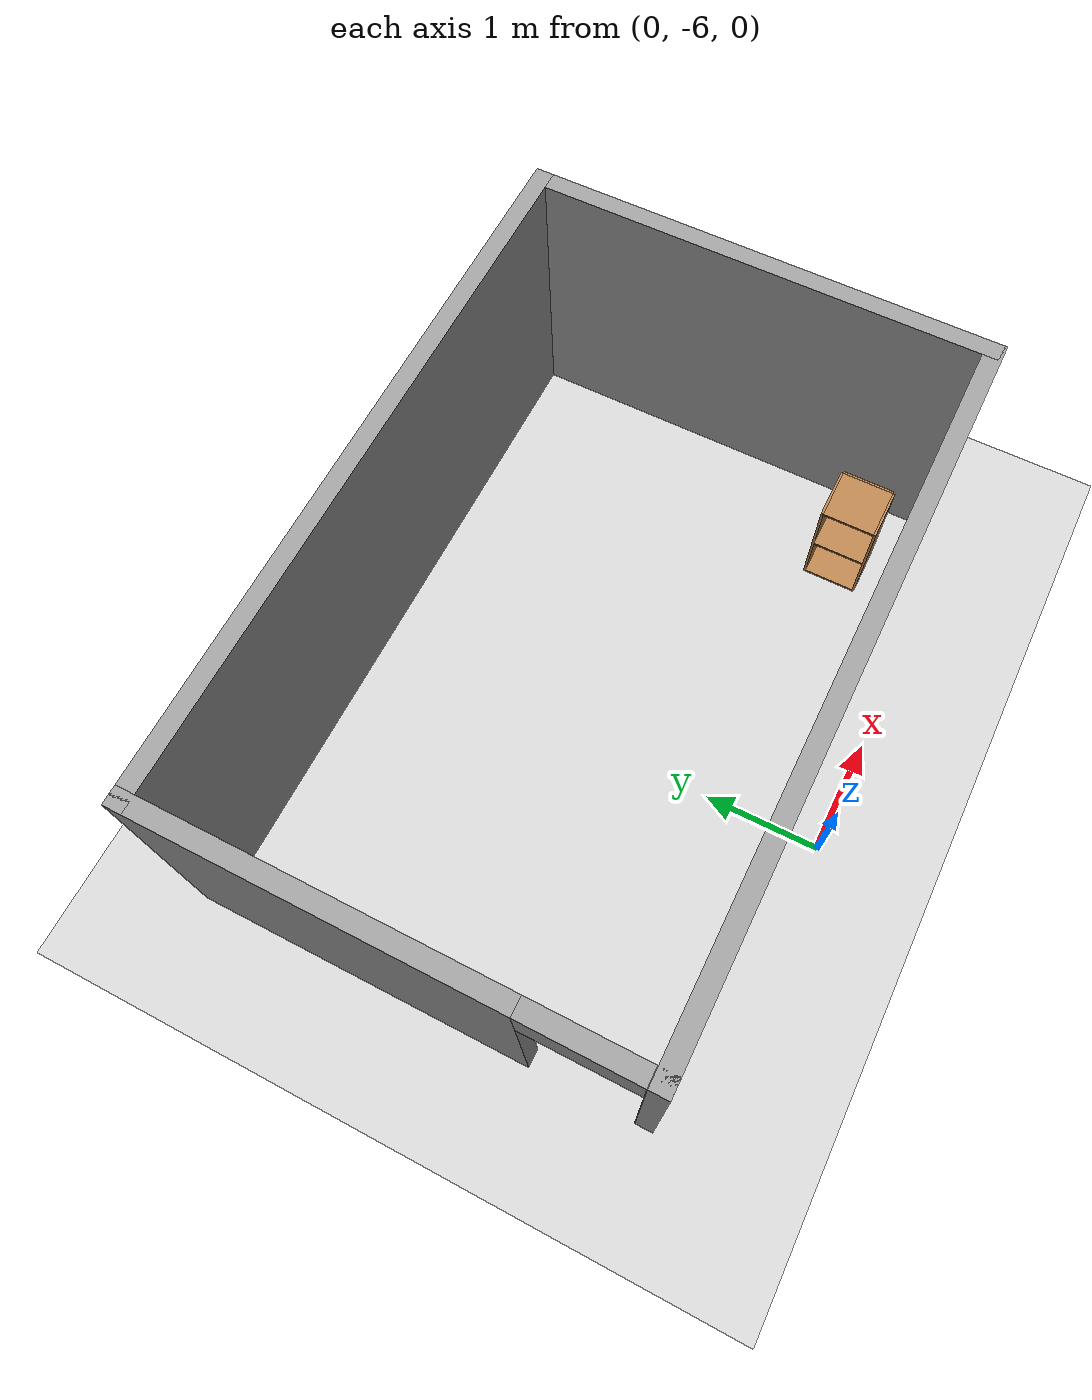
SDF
<sdf version="1.6">
 <world name="default">
  <light name="sun" type="directional">
   <pose>0 0 10 0 -0 0</pose>
   <diffuse>0.8 0.8 0.8 1</diffuse>
   <specular>0.2 0.2 0.2 1</specular>
   <attenuation>
    <range>1000</range>
    <constant>0.9</constant>
    <linear>0.01</linear>
    <quadratic>0.001</quadratic>
   </attenuation>
   <direction>-0.5 0.1 -0.9</direction>
  </light>
  <model name="ground_plane">
   <static>1</static>
   <link name="link">
    <collision name="collision">
     <geometry><plane><normal>0 0 1</normal><size>100 100</size></plane></geometry>
     <surface><friction><ode><mu>100</mu><mu2>50</mu2></ode></friction></surface>
    </collision>
    <visual name="visual">
     <cast_shadows>0</cast_shadows>
     <geometry><plane><normal>0 0 1</normal><size>100 100</size></plane></geometry>
     <material>
      <script><uri>file://media/materials/scripts/gazebo.material</uri><name>Gazebo/Grey</name></script>
     </material>
    </visual>
   </link>
  </model>
  <gravity>0 0 -9.8</gravity>
  <magnetic_field>6e-06 2.3e-05 -4.2e-05</magnetic_field>
  <atmosphere type="adiabatic"/>
  <physics name="default_physics" default="0" type="ode">
   <max_step_size>0.001</max_step_size>
   <real_time_factor>1</real_time_factor>
   <real_time_update_rate>1000</real_time_update_rate>
  </physics>
  <scene><ambient>0.4 0.4 0.4 1</ambient><background>0.7 0.7 0.7 1</background><shadows>1</shadows></scene>
  <audio><device>default</device></audio>
  <spherical_coordinates>
   <surface_model>EARTH_WGS84</surface_model>
   <latitude_deg>0</latitude_deg>
   <longitude_deg>0</longitude_deg>
   <elevation>0</elevation>
   <heading_deg>0</heading_deg>
  </spherical_coordinates>
  <model name="room1.world">
   <pose>0.415 -3.725 0 0 -0 0</pose>
   <link name="Wall_0">
    <collision name="Wall_0_Collision">
     <geometry><box><size>6 0.15 2.5</size></box></geometry>
     <pose>0 0 1.25 0 -0 0</pose>
    </collision>
    <visual name="Wall_0_Visual">
     <pose>0 0 1.25 0 -0 0</pose>
     <geometry><box><size>6 0.15 2.5</size></box></geometry>
     <material>
      <script><uri>file://media/materials/scripts/gazebo.material</uri><name>Gazebo/Grey</name></script>
      <ambient>1 1 1 1</ambient>
     </material>
     <meta><layer>0</layer></meta>
    </visual>
    <pose>0 1.925 0 0 -0 0</pose>
   </link>
   <link name="Wall_1">
    <collision name="Wall_1_Collision">
     <geometry><box><size>4 0.15 2.5</size></box></geometry>
     <pose>0 0 1.25 0 -0 0</pose>
    </collision>
    <visual name="Wall_1_Visual">
     <pose>0 0 1.25 0 -0 0</pose>
     <geometry><box><size>4 0.15 2.5</size></box></geometry>
     <material>
      <script><uri>file://media/materials/scripts/gazebo.material</uri><name>Gazebo/Grey</name></script>
      <ambient>1 1 1 1</ambient>
     </material>
     <meta><layer>0</layer></meta>
    </visual>
    <pose>2.925 0 0 0 -0 -1.5708</pose>
   </link>
   <link name="Wall_2">
    <collision name="Wall_2_Collision">
     <geometry><box><size>6 0.15 2.5</size></box></geometry>
     <pose>0 0 1.25 0 -0 0</pose>
    </collision>
    <visual name="Wall_2_Visual">
     <pose>0 0 1.25 0 -0 0</pose>
     <geometry><box><size>6 0.15 2.5</size></box></geometry>
     <material>
      <script><uri>file://media/materials/scripts/gazebo.material</uri><name>Gazebo/Grey</name></script>
      <ambient>1 1 1 1</ambient>
     </material>
     <meta><layer>0</layer></meta>
    </visual>
    <pose>0 -1.925 0 0 -0 3.14159</pose>
   </link>
   <link name="Wall_3">
    <pose>-2.925 0 0 0 -0 1.5708</pose>
    <visual name="Wall_3_Visual_0">
     <pose>-1.9225 0 1.25 0 -0 0</pose>
     <geometry><box><size>0.155 0.15 2.5</size></box></geometry>
     <material>
      <script><uri>file://media/materials/scripts/gazebo.material</uri><name>Gazebo/Grey</name></script>
      <ambient>1 1 1 1</ambient>
     </material>
     <meta><layer>0</layer></meta>
    </visual>
    <collision name="Wall_3_Collision_0">
     <geometry><box><size>0.155 0.15 2.5</size></box></geometry>
     <pose>-1.9225 0 1.25 0 -0 0</pose>
    </collision>
    <visual name="Wall_3_Visual_1">
     <pose>0.5275 0 1.25 0 -0 0</pose>
     <geometry><box><size>2.945 0.15 2.5</size></box></geometry>
     <material>
      <script><uri>file://media/materials/scripts/gazebo.material</uri><name>Gazebo/Grey</name></script>
      <ambient>1 1 1 1</ambient>
     </material>
     <meta><layer>0</layer></meta>
    </visual>
    <collision name="Wall_3_Collision_1">
     <geometry><box><size>2.945 0.15 2.5</size></box></geometry>
     <pose>0.5275 0 1.25 0 -0 0</pose>
    </collision>
    <visual name="Wall_3_Visual_2">
     <pose>-1.395 0 2.25 0 -0 0</pose>
     <geometry><box><size>0.9 0.15 0.5</size></box></geometry>
     <material>
      <script><uri>file://media/materials/scripts/gazebo.material</uri><name>Gazebo/Grey</name></script>
      <ambient>1 1 1 1</ambient>
     </material>
     <meta><layer>0</layer></meta>
    </visual>
    <collision name="Wall_3_Collision_2">
     <geometry><box><size>0.9 0.15 0.5</size></box></geometry>
     <pose>-1.395 0 2.25 0 -0 0</pose>
    </collision>
   </link>
   <static>1</static>
  </model>
  <model name="cabinet">
   <static>1</static>
   <link name="cabinet_bottom_plate">
    <inertial>
     <pose>0 0 -1 0 -0 0</pose>
     <inertia><ixx>2.05</ixx><ixy>0</ixy><ixz>0</ixz><iyy>2.05</iyy><iyz>0</iyz><izz>2.05</izz></inertia>
     <mass>25</mass>
    </inertial>
    <collision name="cabinet_bottom_plate_geom">
     <pose>0 0 0.01 0 -0 0</pose>
     <geometry><box><size>0.45 0.45 0.02</size></box></geometry>
    </collision>
    <visual name="cabinet_bottom_plate_geom_visual">
     <pose>0 0 0.01 0 -0 0</pose>
     <geometry><box><size>0.45 0.45 0.02</size></box></geometry>
     <material>
      <script><uri>file://media/materials/scripts/gazebo.material</uri><name>Gazebo/Wood</name></script>
     </material>
    </visual>
    <collision name="cabinet_bottom_plate_geom_cabinet_back_plate">
     <pose>0.235 0 0.51 0 -0 0</pose>
     <geometry><box><size>0.02 0.45 1.02</size></box></geometry>
    </collision>
    <visual name="cabinet_bottom_plate_geom_cabinet_back_plate_visual">
     <pose>0.235 0 0.51 0 -0 0</pose>
     <geometry><box><size>0.02 0.45 1.02</size></box></geometry>
     <material>
      <script><uri>file://media/materials/scripts/gazebo.material</uri><name>Gazebo/Wood</name></script>
     </material>
    </visual>
    <collision name="cabinet_bottom_plate_geom_cabinet_left_plate">
     <pose>0 0.235 0.51 0 -0 0</pose>
     <geometry><box><size>0.45 0.02 1.02</size></box></geometry>
    </collision>
    <visual name="cabinet_bottom_plate_geom_cabinet_left_plate_visual">
     <pose>0 0.235 0.51 0 -0 0</pose>
     <geometry><box><size>0.45 0.02 1.02</size></box></geometry>
     <material>
      <script><uri>file://media/materials/scripts/gazebo.material</uri><name>Gazebo/Wood</name></script>
     </material>
    </visual>
    <collision name="cabinet_bottom_plate_geom_cabinet_middle_plate">
     <pose>0 0 0.51 0 -0 0</pose>
     <geometry><box><size>0.45 0.45 0.02</size></box></geometry>
    </collision>
    <visual name="cabinet_bottom_plate_geom_cabinet_middle_plate_visual">
     <pose>0 0 0.51 0 -0 0</pose>
     <geometry><box><size>0.45 0.45 0.02</size></box></geometry>
     <material>
      <script><uri>file://media/materials/scripts/gazebo.material</uri><name>Gazebo/Wood</name></script>
     </material>
    </visual>
    <collision name="cabinet_bottom_plate_geom_cabinet_right_plate">
     <pose>0 -0.235 0.51 0 -0 0</pose>
     <geometry><box><size>0.45 0.02 1.02</size></box></geometry>
    </collision>
    <visual name="cabinet_bottom_plate_geom_cabinet_right_plate_visual">
     <pose>0 -0.235 0.51 0 -0 0</pose>
     <geometry><box><size>0.45 0.02 1.02</size></box></geometry>
     <material>
      <script><uri>file://media/materials/scripts/gazebo.material</uri><name>Gazebo/Wood</name></script>
     </material>
    </visual>
    <collision name="cabinet_bottom_plate_geom_cabinet_top_plate">
     <pose>0 0 1.01 0 -0 0</pose>
     <geometry><box><size>0.45 0.45 0.02</size></box></geometry>
    </collision>
    <visual name="cabinet_bottom_plate_geom_cabinet_top_plate_visual">
     <pose>0 0 1.01 0 -0 0</pose>
     <geometry><box><size>0.45 0.45 0.02</size></box></geometry>
     <material>
      <script><uri>file://media/materials/scripts/gazebo.material</uri><name>Gazebo/Wood</name></script>
     </material>
    </visual>
   </link>
   <pose>2.5781 -5.14254 0 0 -0 0</pose>
  </model>
 </world>
</sdf>
